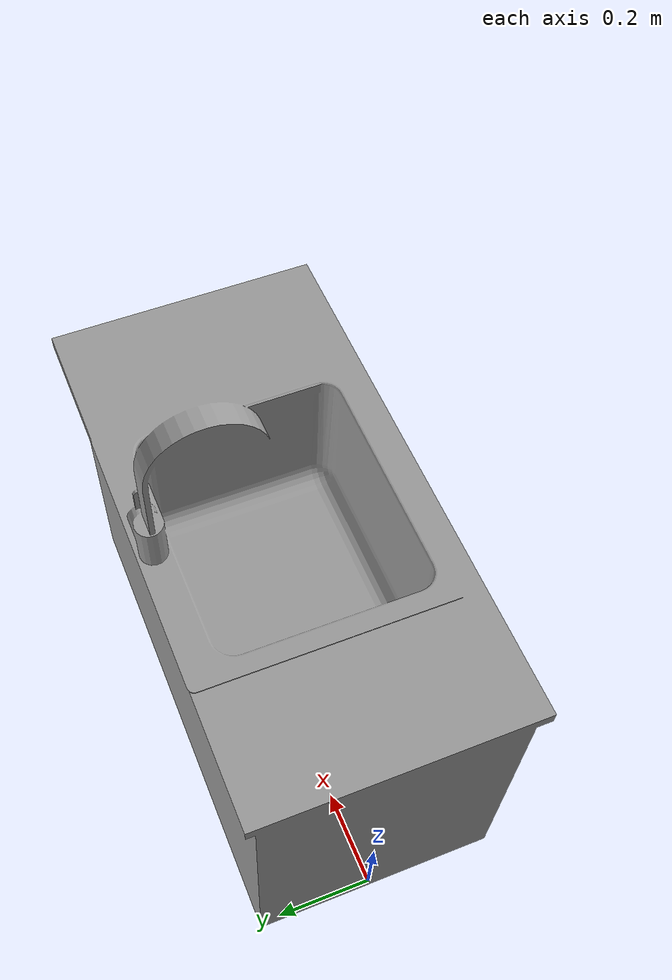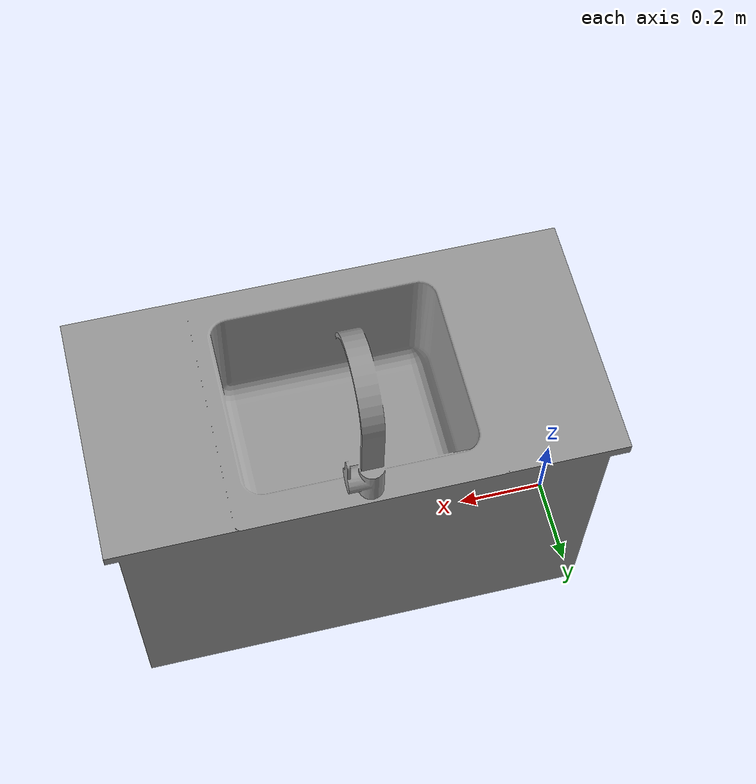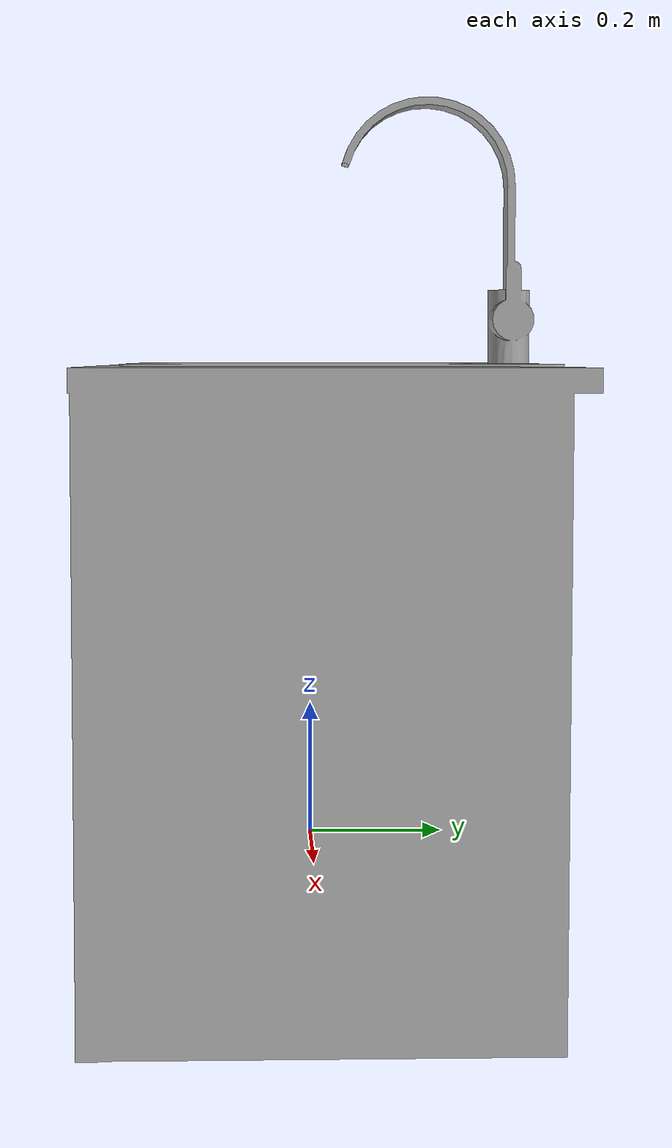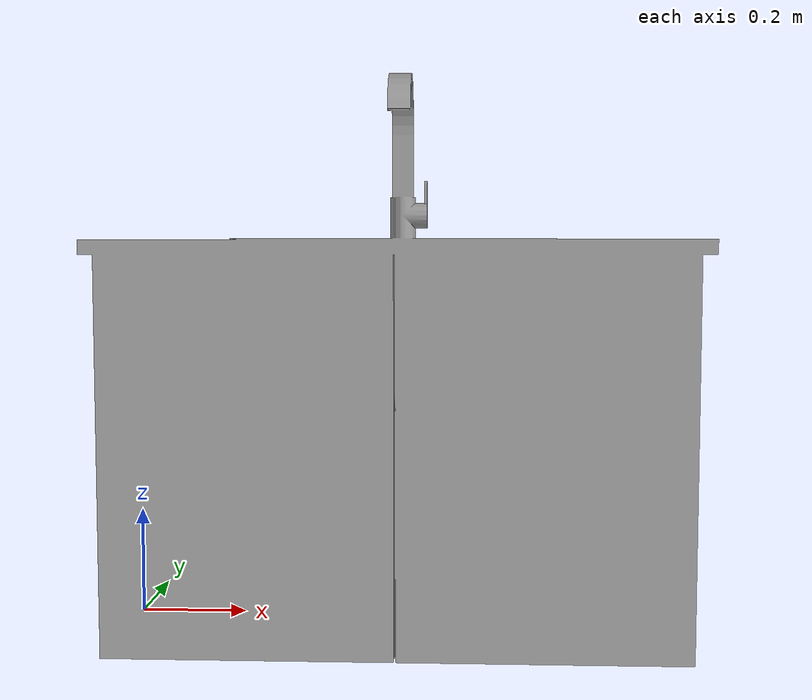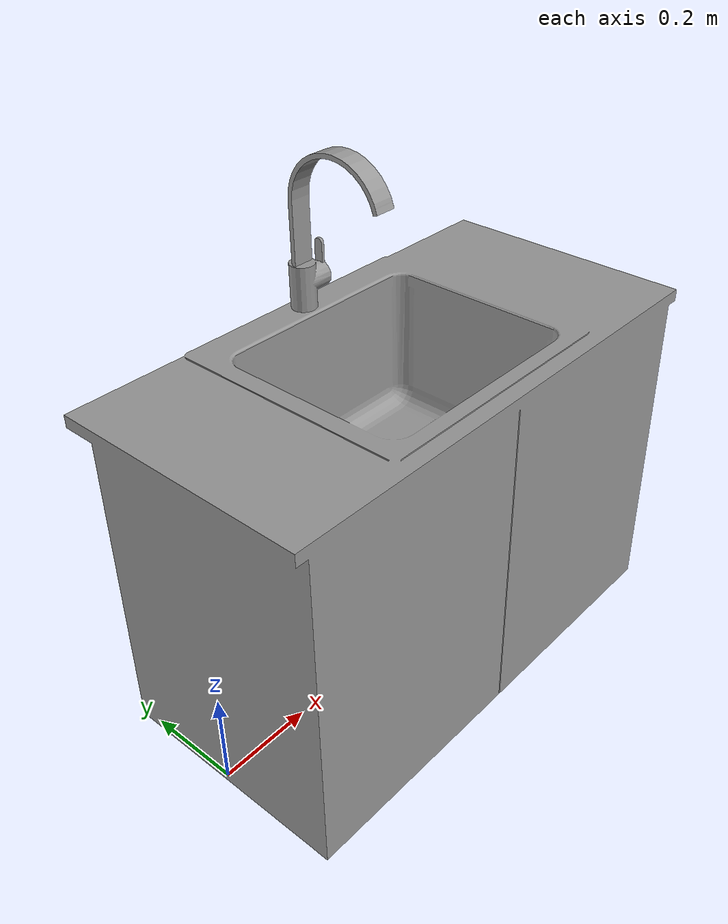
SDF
<?xml version='1.0'?>
<sdf version='1.6'>
  <model name='rai_kitchen_sink'>
    <link name='link_4'>
      <pose frame=''>0 0 0 0 -0 0</pose>
      <visual name='visual'>
        <pose frame=''>0 0.72 -0.27 1.57 -0 0</pose>
        <geometry>
          <mesh>
           <uri>model://rai_kitchen_sink/meshes/rai_kitchen_sink.STL</uri>
            <scale>1 1 1</scale>
          </mesh>
        </geometry>
        <material>
          <lighting>1</lighting>
          <script>
            <uri>file://media/materials/scripts/gazebo.material</uri>
            <name>Gazebo/Grey</name>
          </script>
          <ambient>0.5 0.5 0.5 1</ambient>
          <diffuse>0.5 0.5 0.5 1</diffuse>
          <specular>0.01 0.01 0.01 1</specular>
          <emissive>0 0 0 1</emissive>
          <shader type='vertex'>
            <normal_map>__default__</normal_map>
          </shader>
        </material>
        <cast_shadows>1</cast_shadows>
        <transparency>0</transparency>
      </visual>
      <collision name='collision'>
        <pose frame=''>0.5 -0.006 0.36 0 -0 0</pose>
        <geometry>
          <box>
            <size>1.05 0.53 0.72</size>
          </box>
        </geometry>
      </collision>
    </link>
    <static>1</static>
    <allow_auto_disable>1</allow_auto_disable>
  </model>
</sdf>
